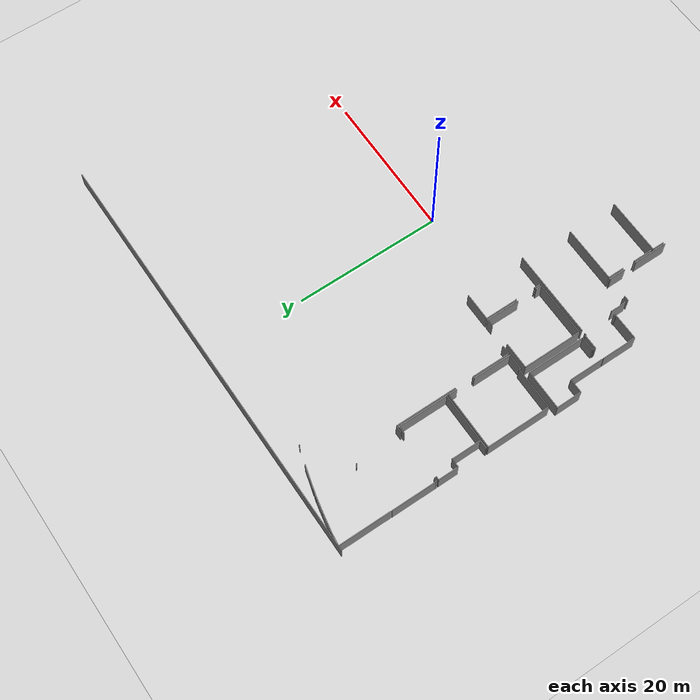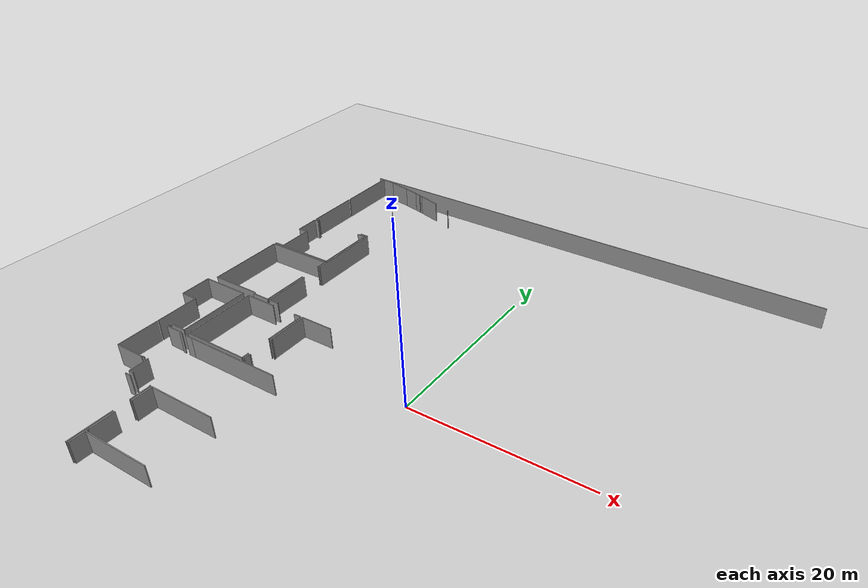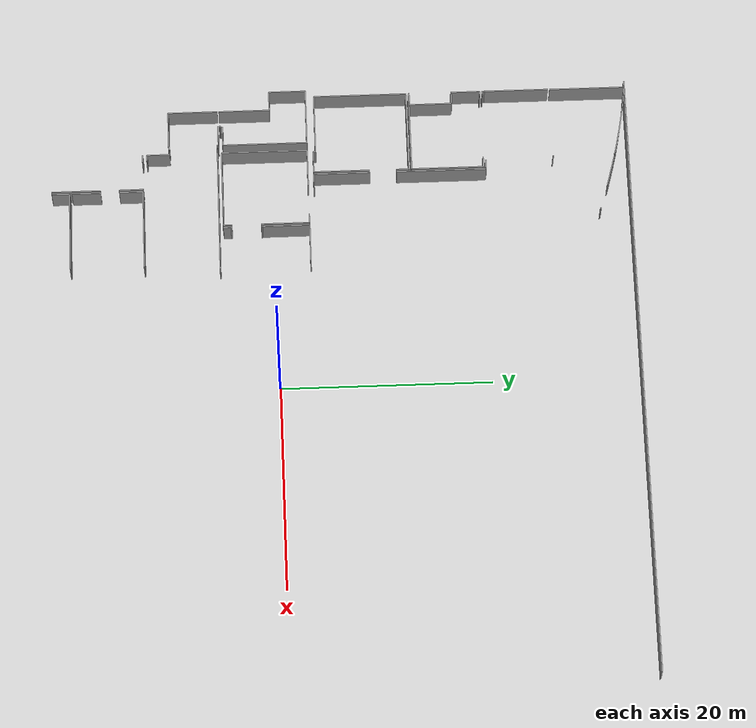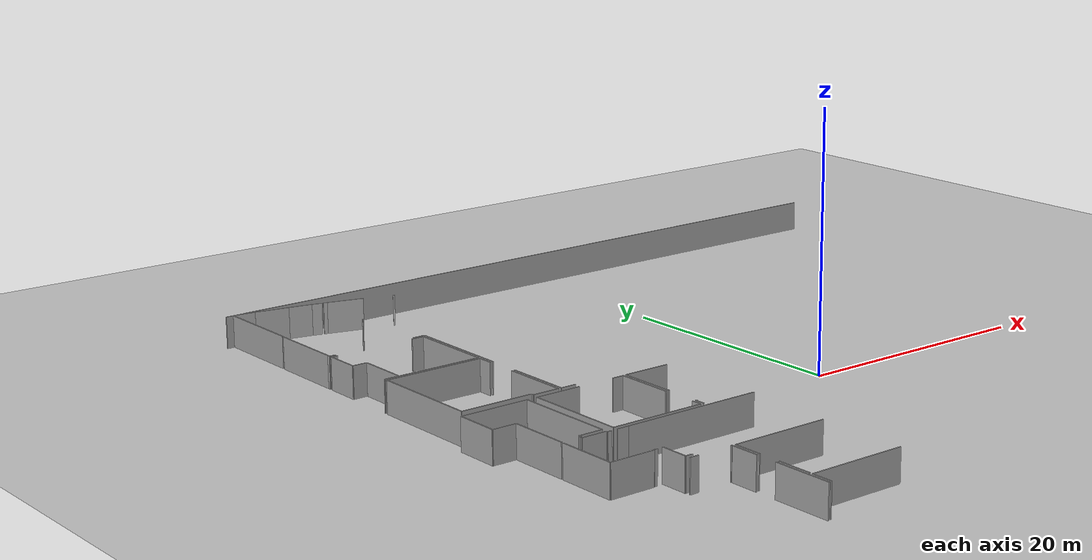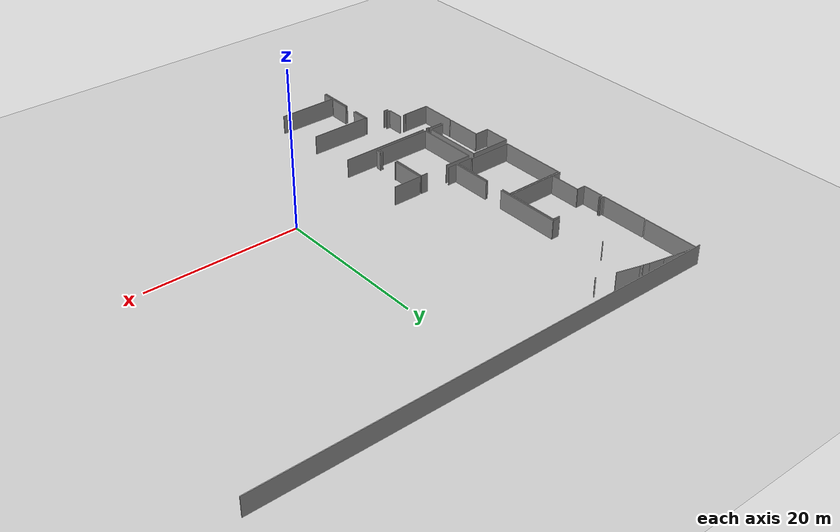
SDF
<sdf version="1.6">
 <world name="default">
  <model name="ground_plane">
   <static>1</static>
   <link name="link">
    <collision name="collision">
     <geometry><plane><normal>0 0 1</normal><size>100 100</size></plane></geometry>
     <surface><friction><ode><mu>100</mu><mu2>50</mu2></ode></friction></surface>
    </collision>
    <visual name="visual">
     <cast_shadows>0</cast_shadows>
     <geometry><plane><normal>0 0 1</normal><size>100 100</size></plane></geometry>
     <material>
      <script><uri>file://media/materials/scripts/gazebo.material</uri><name>Gazebo/Grey</name></script>
     </material>
    </visual>
   </link>
  </model>
  <model name="50041192">
   <static>1</static>
   <link name="Wall_0">
    <collision name="Wall_0_Collision">
     <geometry><box><size>7.18817429759 0.1 2.5</size></box></geometry>
     <pose>3.59408714879 0 1.25 0 0 0</pose>
    </collision>
    <visual name="Wall_0_Visual">
     <pose>3.59408714879 0 1.25 0 0 0</pose>
     <geometry><box><size>7.18817429759 0.1 2.5</size></box></geometry>
     <material>
      <script><uri>file://media/materials/scripts/gazebo.material</uri><name>Gazebo/Grey</name></script>
      <ambient>1 1 1 1</ambient>
     </material>
    </visual>
    <pose>0.632839007281 -7.18817429759 0 0 0 1.57079632679</pose>
   </link>
   <link name="Wall_1">
    <collision name="Wall_1_Collision">
     <geometry><box><size>1.75687054855 0.1 2.5</size></box></geometry>
     <pose>0.878435274276 0 1.25 0 0 0</pose>
    </collision>
    <visual name="Wall_1_Visual">
     <pose>0.878435274276 0 1.25 0 0 0</pose>
     <geometry><box><size>1.75687054855 0.1 2.5</size></box></geometry>
     <material>
      <script><uri>file://media/materials/scripts/gazebo.material</uri><name>Gazebo/Grey</name></script>
      <ambient>1 1 1 1</ambient>
     </material>
    </visual>
    <pose>0.632839007281 -0.0 0 0 0 -0.12982228404</pose>
   </link>
   <link name="Wall_2">
    <collision name="Wall_2_Collision">
     <geometry><box><size>2.73227401978 0.1 2.5</size></box></geometry>
     <pose>1.36613700989 0 1.25 0 0 0</pose>
    </collision>
    <visual name="Wall_2_Visual">
     <pose>1.36613700989 0 1.25 0 0 0</pose>
     <geometry><box><size>2.73227401978 0.1 2.5</size></box></geometry>
     <material>
      <script><uri>file://media/materials/scripts/gazebo.material</uri><name>Gazebo/Grey</name></script>
      <ambient>1 1 1 1</ambient>
     </material>
    </visual>
    <pose>2.37492534279 -0.227440814304 0 0 0 -0.186057639425</pose>
   </link>
   <link name="Wall_3">
    <collision name="Wall_3_Collision">
     <geometry><box><size>1.87062123023 0.1 2.5</size></box></geometry>
     <pose>0.935310615117 0 1.25 0 0 0</pose>
    </collision>
    <visual name="Wall_3_Visual">
     <pose>0.935310615117 0 1.25 0 0 0</pose>
     <geometry><box><size>1.87062123023 0.1 2.5</size></box></geometry>
     <material>
      <script><uri>file://media/materials/scripts/gazebo.material</uri><name>Gazebo/Grey</name></script>
      <ambient>1 1 1 1</ambient>
     </material>
    </visual>
    <pose>5.06004346003 -0.73287331783 0 0 0 -0.208720073857</pose>
   </link>
   <link name="Wall_4">
    <collision name="Wall_4_Collision">
     <geometry><box><size>0.804798564311 0.1 2.5</size></box></geometry>
     <pose>0.402399282156 0 1.25 0 0 0</pose>
    </collision>
    <visual name="Wall_4_Visual">
     <pose>0.402399282156 0 1.25 0 0 0</pose>
     <geometry><box><size>0.804798564311 0.1 2.5</size></box></geometry>
     <material>
      <script><uri>file://media/materials/scripts/gazebo.material</uri><name>Gazebo/Grey</name></script>
      <ambient>1 1 1 1</ambient>
     </material>
    </visual>
    <pose>6.8900664608 -1.12048085598 0 0 0 -0.263867322598</pose>
   </link>
   <link name="Wall_5">
    <collision name="Wall_5_Collision">
     <geometry><box><size>0.0614808068669 0.1 2.5</size></box></geometry>
     <pose>0.0307404034334 0 1.25 0 0 0</pose>
    </collision>
    <visual name="Wall_5_Visual">
     <pose>0.0307404034334 0 1.25 0 0 0</pose>
     <geometry><box><size>0.0614808068669 0.1 2.5</size></box></geometry>
     <material>
      <script><uri>file://media/materials/scripts/gazebo.material</uri><name>Gazebo/Grey</name></script>
      <ambient>1 1 1 1</ambient>
     </material>
    </visual>
    <pose>7.66700977215 -7.18461616662 0 0 0 -3.08368644834</pose>
   </link>
   <link name="Wall_6">
    <collision name="Wall_6_Collision">
     <geometry><box><size>2.91367959298 0.1 2.5</size></box></geometry>
     <pose>1.45683979649 0 1.25 0 0 0</pose>
    </collision>
    <visual name="Wall_6_Visual">
     <pose>1.45683979649 0 1.25 0 0 0</pose>
     <geometry><box><size>2.91367959298 0.1 2.5</size></box></geometry>
     <material>
      <script><uri>file://media/materials/scripts/gazebo.material</uri><name>Gazebo/Grey</name></script>
      <ambient>1 1 1 1</ambient>
     </material>
    </visual>
    <pose>8.08483600829 -1.42307447931 0 0 0 -0.268842455313</pose>
   </link>
   <link name="Wall_7">
    <collision name="Wall_7_Collision">
     <geometry><box><size>0.12458212514 0.1 2.5</size></box></geometry>
     <pose>0.0622910625701 0 1.25 0 0 0</pose>
    </collision>
    <visual name="Wall_7_Visual">
     <pose>0.0622910625701 0 1.25 0 0 0</pose>
     <geometry><box><size>0.12458212514 0.1 2.5</size></box></geometry>
     <material>
      <script><uri>file://media/materials/scripts/gazebo.material</uri><name>Gazebo/Grey</name></script>
      <ambient>1 1 1 1</ambient>
     </material>
    </visual>
    <pose>13.2101965867 -2.92520300408 0 0 0 -0.531760269162</pose>
   </link>
   <link name="Wall_8">
    <collision name="Wall_8_Collision">
     <geometry><box><size>0.301906292314 0.1 2.5</size></box></geometry>
     <pose>0.150953146157 0 1.25 0 0 0</pose>
    </collision>
    <visual name="Wall_8_Visual">
     <pose>0.150953146157 0 1.25 0 0 0</pose>
     <geometry><box><size>0.301906292314 0.1 2.5</size></box></geometry>
     <material>
      <script><uri>file://media/materials/scripts/gazebo.material</uri><name>Gazebo/Grey</name></script>
      <ambient>1 1 1 1</ambient>
     </material>
    </visual>
    <pose>7.79090897539 -1.35412298426 0 0 0 -0.230420648931</pose>
   </link>
   <link name="Wall_9">
    <collision name="Wall_9_Collision">
     <geometry><box><size>6.08961406987 0.1 2.5</size></box></geometry>
     <pose>3.04480703493 0 1.25 0 0 0</pose>
    </collision>
    <visual name="Wall_9_Visual">
     <pose>3.04480703493 0 1.25 0 0 0</pose>
     <geometry><box><size>6.08961406987 0.1 2.5</size></box></geometry>
     <material>
      <script><uri>file://media/materials/scripts/gazebo.material</uri><name>Gazebo/Grey</name></script>
      <ambient>1 1 1 1</ambient>
     </material>
    </visual>
    <pose>0.612760982552 -13.4373959564 0 0 0 1.57079632679</pose>
   </link>
   <link name="Wall_10">
    <collision name="Wall_10_Collision">
     <geometry><box><size>0.501061085484 0.1 2.5</size></box></geometry>
     <pose>0.250530542742 0 1.25 0 0 0</pose>
    </collision>
    <visual name="Wall_10_Visual">
     <pose>0.250530542742 0 1.25 0 0 0</pose>
     <geometry><box><size>0.501061085484 0.1 2.5</size></box></geometry>
     <material>
      <script><uri>file://media/materials/scripts/gazebo.material</uri><name>Gazebo/Grey</name></script>
      <ambient>1 1 1 1</ambient>
     </material>
    </visual>
    <pose>1.11623651405 -13.6559668586 0 0 0 3.14159265359</pose>
   </link>
   <link name="Wall_11">
    <collision name="Wall_11_Collision">
     <geometry><box><size>0.218584237309 0.1 2.5</size></box></geometry>
     <pose>0.109292118655 0 1.25 0 0 0</pose>
    </collision>
    <visual name="Wall_11_Visual">
     <pose>0.109292118655 0 1.25 0 0 0</pose>
     <geometry><box><size>0.218584237309 0.1 2.5</size></box></geometry>
     <material>
      <script><uri>file://media/materials/scripts/gazebo.material</uri><name>Gazebo/Grey</name></script>
      <ambient>1 1 1 1</ambient>
     </material>
    </visual>
    <pose>0.615175428564 -13.6559668586 0 0 0 1.58184238914</pose>
   </link>
   <link name="Wall_12">
    <collision name="Wall_12_Collision">
     <geometry><box><size>0.0498138335049 0.1 2.5</size></box></geometry>
     <pose>0.0249069167524 0 1.25 0 0 0</pose>
    </collision>
    <visual name="Wall_12_Visual">
     <pose>0.0249069167524 0 1.25 0 0 0</pose>
     <geometry><box><size>0.0498138335049 0.1 2.5</size></box></geometry>
     <material>
      <script><uri>file://media/materials/scripts/gazebo.material</uri><name>Gazebo/Grey</name></script>
      <ambient>1 1 1 1</ambient>
     </material>
    </visual>
    <pose>0.622291690493 -20.7590128728 0 0 0 1.57079632679</pose>
   </link>
   <link name="Wall_13">
    <collision name="Wall_13_Collision">
     <geometry><box><size>1.17329368559 0.1 2.5</size></box></geometry>
     <pose>0.586646842794 0 1.25 0 0 0</pose>
    </collision>
    <visual name="Wall_13_Visual">
     <pose>0.586646842794 0 1.25 0 0 0</pose>
     <geometry><box><size>1.17329368559 0.1 2.5</size></box></geometry>
     <material>
      <script><uri>file://media/materials/scripts/gazebo.material</uri><name>Gazebo/Grey</name></script>
      <ambient>1 1 1 1</ambient>
     </material>
    </visual>
    <pose>0.622291690493 -20.7091990393 0 0 0 0.0</pose>
   </link>
   <link name="Wall_14">
    <collision name="Wall_14_Collision">
     <geometry><box><size>4.04254508025 0.1 2.5</size></box></geometry>
     <pose>2.02127254012 0 1.25 0 0 0</pose>
    </collision>
    <visual name="Wall_14_Visual">
     <pose>2.02127254012 0 1.25 0 0 0</pose>
     <geometry><box><size>4.04254508025 0.1 2.5</size></box></geometry>
     <material>
      <script><uri>file://media/materials/scripts/gazebo.material</uri><name>Gazebo/Grey</name></script>
      <ambient>1 1 1 1</ambient>
     </material>
    </visual>
    <pose>1.79558537608 -20.7091990393 0 0 0 1.57079632679</pose>
   </link>
   <link name="Wall_15">
    <collision name="Wall_15_Collision">
     <geometry><box><size>1.1757081316 0.1 2.5</size></box></geometry>
     <pose>0.5878540658 0 1.25 0 0 0</pose>
    </collision>
    <visual name="Wall_15_Visual">
     <pose>0.5878540658 0 1.25 0 0 0</pose>
     <geometry><box><size>1.1757081316 0.1 2.5</size></box></geometry>
     <material>
      <script><uri>file://media/materials/scripts/gazebo.material</uri><name>Gazebo/Grey</name></script>
      <ambient>1 1 1 1</ambient>
     </material>
    </visual>
    <pose>1.79558537608 -16.6666539591 0 0 0 3.14159265359</pose>
   </link>
   <link name="Wall_16">
    <collision name="Wall_16_Collision">
     <geometry><box><size>2.77407139136 0.1 2.5</size></box></geometry>
     <pose>1.38703569568 0 1.25 0 0 0</pose>
    </collision>
    <visual name="Wall_16_Visual">
     <pose>1.38703569568 0 1.25 0 0 0</pose>
     <geometry><box><size>2.77407139136 0.1 2.5</size></box></geometry>
     <material>
      <script><uri>file://media/materials/scripts/gazebo.material</uri><name>Gazebo/Grey</name></script>
      <ambient>1 1 1 1</ambient>
     </material>
    </visual>
    <pose>0.619877244482 -16.6666539591 0 0 0 1.57079632679</pose>
   </link>
   <link name="Wall_17">
    <collision name="Wall_17_Collision">
     <geometry><box><size>0.510718869531 0.1 2.5</size></box></geometry>
     <pose>0.255359434765 0 1.25 0 0 0</pose>
    </collision>
    <visual name="Wall_17_Visual">
     <pose>0.255359434765 0 1.25 0 0 0</pose>
     <geometry><box><size>0.510718869531 0.1 2.5</size></box></geometry>
     <material>
      <script><uri>file://media/materials/scripts/gazebo.material</uri><name>Gazebo/Grey</name></script>
      <ambient>1 1 1 1</ambient>
     </material>
    </visual>
    <pose>0.619877244482 -13.8925825677 0 0 0 0.0</pose>
   </link>
   <link name="Wall_18">
    <collision name="Wall_18_Collision">
     <geometry><box><size>1.01838791252 0.1 2.5</size></box></geometry>
     <pose>0.50919395626 0 1.25 0 0 0</pose>
    </collision>
    <visual name="Wall_18_Visual">
     <pose>0.50919395626 0 1.25 0 0 0</pose>
     <geometry><box><size>1.01838791252 0.1 2.5</size></box></geometry>
     <material>
      <script><uri>file://media/materials/scripts/gazebo.material</uri><name>Gazebo/Grey</name></script>
      <ambient>1 1 1 1</ambient>
     </material>
    </visual>
    <pose>7.54539793883 -13.8925825677 0 0 0 0.0</pose>
   </link>
   <link name="Wall_19">
    <collision name="Wall_19_Collision">
     <geometry><box><size>6.8575349777 0.1 2.5</size></box></geometry>
     <pose>3.42876748885 0 1.25 0 0 0</pose>
    </collision>
    <visual name="Wall_19_Visual">
     <pose>3.42876748885 0 1.25 0 0 0</pose>
     <geometry><box><size>6.8575349777 0.1 2.5</size></box></geometry>
     <material>
      <script><uri>file://media/materials/scripts/gazebo.material</uri><name>Gazebo/Grey</name></script>
      <ambient>1 1 1 1</ambient>
     </material>
    </visual>
    <pose>8.56378585135 -13.8925825677 0 0 0 -1.57079632679</pose>
   </link>
   <link name="Wall_20">
    <collision name="Wall_20_Collision">
     <geometry><box><size>7.94149914271 0.1 2.5</size></box></geometry>
     <pose>3.97074957136 0 1.25 0 0 0</pose>
    </collision>
    <visual name="Wall_20_Visual">
     <pose>3.97074957136 0 1.25 0 0 0</pose>
     <geometry><box><size>7.94149914271 0.1 2.5</size></box></geometry>
     <material>
      <script><uri>file://media/materials/scripts/gazebo.material</uri><name>Gazebo/Grey</name></script>
      <ambient>1 1 1 1</ambient>
     </material>
    </visual>
    <pose>8.56378585135 -20.7501175454 0 0 0 -3.14047254653</pose>
   </link>
   <link name="Wall_21">
    <collision name="Wall_21_Collision">
     <geometry><box><size>8.85262984001 0.1 2.5</size></box></geometry>
     <pose>4.42631492001 0 1.25 0 0 0</pose>
    </collision>
    <visual name="Wall_21_Visual">
     <pose>4.42631492001 0 1.25 0 0 0</pose>
     <geometry><box><size>8.85262984001 0.1 2.5</size></box></geometry>
     <material>
      <script><uri>file://media/materials/scripts/gazebo.material</uri><name>Gazebo/Grey</name></script>
      <ambient>1 1 1 1</ambient>
     </material>
    </visual>
    <pose>0.62610397367 -29.8576620538 0 0 0 1.57079632679</pose>
   </link>
   <link name="Wall_22">
    <collision name="Wall_22_Collision">
     <geometry><box><size>7.93755480157 0.1 2.5</size></box></geometry>
     <pose>3.96877740079 0 1.25 0 0 0</pose>
    </collision>
    <visual name="Wall_22_Visual">
     <pose>3.96877740079 0 1.25 0 0 0</pose>
     <geometry><box><size>7.93755480157 0.1 2.5</size></box></geometry>
     <material>
      <script><uri>file://media/materials/scripts/gazebo.material</uri><name>Gazebo/Grey</name></script>
      <ambient>1 1 1 1</ambient>
     </material>
    </visual>
    <pose>0.62610397367 -21.0050322138 0 0 0 0.0</pose>
   </link>
   <link name="Wall_23">
    <collision name="Wall_23_Collision">
     <geometry><box><size>1.21344973505 0.1 2.5</size></box></geometry>
     <pose>0.606724867523 0 1.25 0 0 0</pose>
    </collision>
    <visual name="Wall_23_Visual">
     <pose>0.606724867523 0 1.25 0 0 0</pose>
     <geometry><box><size>1.21344973505 0.1 2.5</size></box></geometry>
     <material>
      <script><uri>file://media/materials/scripts/gazebo.material</uri><name>Gazebo/Grey</name></script>
      <ambient>1 1 1 1</ambient>
     </material>
    </visual>
    <pose>8.56365877524 -21.0050322138 0 0 0 -1.57079632679</pose>
   </link>
   <link name="Wall_24">
    <collision name="Wall_24_Collision">
     <geometry><box><size>5.33643399032 0.1 2.5</size></box></geometry>
     <pose>2.66821699516 0 1.25 0 0 0</pose>
    </collision>
    <visual name="Wall_24_Visual">
     <pose>2.66821699516 0 1.25 0 0 0</pose>
     <geometry><box><size>5.33643399032 0.1 2.5</size></box></geometry>
     <material>
      <script><uri>file://media/materials/scripts/gazebo.material</uri><name>Gazebo/Grey</name></script>
      <ambient>1 1 1 1</ambient>
     </material>
    </visual>
    <pose>8.56365877524 -24.7532690328 0 0 0 -1.57079632679</pose>
   </link>
   <link name="Wall_25">
    <collision name="Wall_25_Collision">
     <geometry><box><size>2.12865184959 0.1 2.5</size></box></geometry>
     <pose>1.0643259248 0 1.25 0 0 0</pose>
    </collision>
    <visual name="Wall_25_Visual">
     <pose>1.0643259248 0 1.25 0 0 0</pose>
     <geometry><box><size>2.12865184959 0.1 2.5</size></box></geometry>
     <material>
      <script><uri>file://media/materials/scripts/gazebo.material</uri><name>Gazebo/Grey</name></script>
      <ambient>1 1 1 1</ambient>
     </material>
    </visual>
    <pose>8.56365877524 -30.0897030231 0 0 0 3.14159265359</pose>
   </link>
   <link name="Wall_26">
    <collision name="Wall_26_Collision">
     <geometry><box><size>0.224289326878 0.1 2.5</size></box></geometry>
     <pose>0.112144663439 0 1.25 0 0 0</pose>
    </collision>
    <visual name="Wall_26_Visual">
     <pose>0.112144663439 0 1.25 0 0 0</pose>
     <geometry><box><size>0.224289326878 0.1 2.5</size></box></geometry>
     <material>
      <script><uri>file://media/materials/scripts/gazebo.material</uri><name>Gazebo/Grey</name></script>
      <ambient>1 1 1 1</ambient>
     </material>
    </visual>
    <pose>6.43500692565 -30.0897030231 0 0 0 1.57079632679</pose>
   </link>
   <link name="Wall_27">
    <collision name="Wall_27_Collision">
     <geometry><box><size>5.80890812403 0.1 2.5</size></box></geometry>
     <pose>2.90445406202 0 1.25 0 0 0</pose>
    </collision>
    <visual name="Wall_27_Visual">
     <pose>2.90445406202 0 1.25 0 0 0</pose>
     <geometry><box><size>5.80890812403 0.1 2.5</size></box></geometry>
     <material>
      <script><uri>file://media/materials/scripts/gazebo.material</uri><name>Gazebo/Grey</name></script>
      <ambient>1 1 1 1</ambient>
     </material>
    </visual>
    <pose>6.43500692565 -29.8654136963 0 0 0 3.14025821266</pose>
   </link>
   <link name="Wall_28">
    <collision name="Wall_28_Collision">
     <geometry><box><size>5.35956184159 0.1 2.5</size></box></geometry>
     <pose>2.67978092079 0 1.25 0 0 0</pose>
    </collision>
    <visual name="Wall_28_Visual">
     <pose>2.67978092079 0 1.25 0 0 0</pose>
     <geometry><box><size>5.35956184159 0.1 2.5</size></box></geometry>
     <material>
      <script><uri>file://media/materials/scripts/gazebo.material</uri><name>Gazebo/Grey</name></script>
      <ambient>1 1 1 1</ambient>
     </material>
    </visual>
    <pose>8.81221963834 -30.1052063081 0 0 0 1.57079632679</pose>
   </link>
   <link name="Wall_29">
    <collision name="Wall_29_Collision">
     <geometry><box><size>8.53328758594 0.1 2.5</size></box></geometry>
     <pose>4.26664379297 0 1.25 0 0 0</pose>
    </collision>
    <visual name="Wall_29_Visual">
     <pose>4.26664379297 0 1.25 0 0 0</pose>
     <geometry><box><size>8.53328758594 0.1 2.5</size></box></geometry>
     <material>
      <script><uri>file://media/materials/scripts/gazebo.material</uri><name>Gazebo/Grey</name></script>
      <ambient>1 1 1 1</ambient>
     </material>
    </visual>
    <pose>8.81221963834 -22.1926854993 0 0 0 1.57079632679</pose>
   </link>
   <link name="Wall_30">
    <collision name="Wall_30_Collision">
     <geometry><box><size>0.975054960416 0.1 2.5</size></box></geometry>
     <pose>0.487527480208 0 1.25 0 0 0</pose>
    </collision>
    <visual name="Wall_30_Visual">
     <pose>0.487527480208 0 1.25 0 0 0</pose>
     <geometry><box><size>0.975054960416 0.1 2.5</size></box></geometry>
     <material>
      <script><uri>file://media/materials/scripts/gazebo.material</uri><name>Gazebo/Grey</name></script>
      <ambient>1 1 1 1</ambient>
     </material>
    </visual>
    <pose>8.81221963834 -13.6593979134 0 0 0 3.14159265359</pose>
   </link>
   <link name="Wall_39">
    <collision name="Wall_39_Collision">
     <geometry><box><size>1.22376359055 0.1 2.5</size></box></geometry>
     <pose>0.611881795276 0 1.25 0 0 0</pose>
    </collision>
    <visual name="Wall_39_Visual">
     <pose>0.611881795276 0 1.25 0 0 0</pose>
     <geometry><box><size>1.22376359055 0.1 2.5</size></box></geometry>
     <material>
      <script><uri>file://media/materials/scripts/gazebo.material</uri><name>Gazebo/Grey</name></script>
      <ambient>1 1 1 1</ambient>
     </material>
    </visual>
    <pose>10.035962538 -30.0980900461 0 0 0 -3.13577755818</pose>
   </link>
   <link name="Wall_47">
    <collision name="Wall_47_Collision">
     <geometry><box><size>8.17760156558 0.1 2.5</size></box></geometry>
     <pose>4.08880078279 0 1.25 0 0 0</pose>
    </collision>
    <visual name="Wall_47_Visual">
     <pose>4.08880078279 0 1.25 0 0 0</pose>
     <geometry><box><size>8.17760156558 0.1 2.5</size></box></geometry>
     <material>
      <script><uri>file://media/materials/scripts/gazebo.material</uri><name>Gazebo/Grey</name></script>
      <ambient>1 1 1 1</ambient>
     </material>
    </visual>
    <pose>6.27717840215 -38.84257812 0 0 0 1.57079632679</pose>
   </link>
   <link name="Wall_48">
    <collision name="Wall_48_Collision">
     <geometry><box><size>3.64644885822 0.1 2.5</size></box></geometry>
     <pose>1.82322442911 0 1.25 0 0 0</pose>
    </collision>
    <visual name="Wall_48_Visual">
     <pose>1.82322442911 0 1.25 0 0 0</pose>
     <geometry><box><size>3.64644885822 0.1 2.5</size></box></geometry>
     <material>
      <script><uri>file://media/materials/scripts/gazebo.material</uri><name>Gazebo/Grey</name></script>
      <ambient>1 1 1 1</ambient>
     </material>
    </visual>
    <pose>6.27717840215 -30.6649765545 0 0 0 0.0</pose>
   </link>
   <link name="Wall_49">
    <collision name="Wall_49_Collision">
     <geometry><box><size>0.926384811864 0.1 2.5</size></box></geometry>
     <pose>0.463192405932 0 1.25 0 0 0</pose>
    </collision>
    <visual name="Wall_49_Visual">
     <pose>0.463192405932 0 1.25 0 0 0</pose>
     <geometry><box><size>0.926384811864 0.1 2.5</size></box></geometry>
     <material>
      <script><uri>file://media/materials/scripts/gazebo.material</uri><name>Gazebo/Grey</name></script>
      <ambient>1 1 1 1</ambient>
     </material>
    </visual>
    <pose>12.8988601273 -30.6649765545 0 0 0 0.0</pose>
   </link>
   <link name="Wall_50">
    <collision name="Wall_50_Collision">
     <geometry><box><size>4.58338098687 0.1 2.5</size></box></geometry>
     <pose>2.29169049344 0 1.25 0 0 0</pose>
    </collision>
    <visual name="Wall_50_Visual">
     <pose>2.29169049344 0 1.25 0 0 0</pose>
     <geometry><box><size>4.58338098687 0.1 2.5</size></box></geometry>
     <material>
      <script><uri>file://media/materials/scripts/gazebo.material</uri><name>Gazebo/Grey</name></script>
      <ambient>1 1 1 1</ambient>
     </material>
    </visual>
    <pose>13.8252449392 -30.6649765545 0 0 0 -1.57079632679</pose>
   </link>
   <link name="Wall_51">
    <collision name="Wall_51_Collision">
     <geometry><box><size>0.834508787313 0.1 2.5</size></box></geometry>
     <pose>0.417254393656 0 1.25 0 0 0</pose>
    </collision>
    <visual name="Wall_51_Visual">
     <pose>0.417254393656 0 1.25 0 0 0</pose>
     <geometry><box><size>0.834508787313 0.1 2.5</size></box></geometry>
     <material>
      <script><uri>file://media/materials/scripts/gazebo.material</uri><name>Gazebo/Grey</name></script>
      <ambient>1 1 1 1</ambient>
     </material>
    </visual>
    <pose>13.8252449392 -38.0057819628 0 0 0 -1.57079632679</pose>
   </link>
   <link name="Wall_52">
    <collision name="Wall_52_Collision">
     <geometry><box><size>7.54806688363 0.1 2.5</size></box></geometry>
     <pose>3.77403344182 0 1.25 0 0 0</pose>
    </collision>
    <visual name="Wall_52_Visual">
     <pose>3.77403344182 0 1.25 0 0 0</pose>
     <geometry><box><size>7.54806688363 0.1 2.5</size></box></geometry>
     <material>
      <script><uri>file://media/materials/scripts/gazebo.material</uri><name>Gazebo/Grey</name></script>
      <ambient>1 1 1 1</ambient>
     </material>
    </visual>
    <pose>13.8252449392 -38.8402907501 0 0 0 -3.14128961309</pose>
   </link>
   <link name="Wall_53">
    <collision name="Wall_53_Collision">
     <geometry><box><size>11.0978104787 0.1 2.5</size></box></geometry>
     <pose>5.54890523935 0 1.25 0 0 0</pose>
    </collision>
    <visual name="Wall_53_Visual">
     <pose>5.54890523935 0 1.25 0 0 0</pose>
     <geometry><box><size>11.0978104787 0.1 2.5</size></box></geometry>
     <material>
      <script><uri>file://media/materials/scripts/gazebo.material</uri><name>Gazebo/Grey</name></script>
      <ambient>1 1 1 1</ambient>
     </material>
    </visual>
    <pose>7.18894946183 -39.2365140483 0 0 0 0.0</pose>
   </link>
   <link name="Wall_68">
    <collision name="Wall_68_Collision">
     <geometry><box><size>0.579085814494 0.1 2.5</size></box></geometry>
     <pose>0.289542907247 0 1.25 0 0 0</pose>
    </collision>
    <visual name="Wall_68_Visual">
     <pose>0.289542907247 0 1.25 0 0 0</pose>
     <geometry><box><size>0.579085814494 0.1 2.5</size></box></geometry>
     <material>
      <script><uri>file://media/materials/scripts/gazebo.material</uri><name>Gazebo/Grey</name></script>
      <ambient>1 1 1 1</ambient>
     </material>
    </visual>
    <pose>6.85651836885 -45.9731996493 0 0 0 3.14159265359</pose>
   </link>
   <link name="Wall_69">
    <collision name="Wall_69_Collision">
     <geometry><box><size>2.1872339344 0.1 2.5</size></box></geometry>
     <pose>1.0936169672 0 1.25 0 0 0</pose>
    </collision>
    <visual name="Wall_69_Visual">
     <pose>1.0936169672 0 1.25 0 0 0</pose>
     <geometry><box><size>2.1872339344 0.1 2.5</size></box></geometry>
     <material>
      <script><uri>file://media/materials/scripts/gazebo.material</uri><name>Gazebo/Grey</name></script>
      <ambient>1 1 1 1</ambient>
     </material>
    </visual>
    <pose>6.27743255436 -45.9731996493 0 0 0 1.57079632679</pose>
   </link>
   <link name="Wall_70">
    <collision name="Wall_70_Collision">
     <geometry><box><size>0.911561559292 0.1 2.5</size></box></geometry>
     <pose>0.455780779646 0 1.25 0 0 0</pose>
    </collision>
    <visual name="Wall_70_Visual">
     <pose>0.455780779646 0 1.25 0 0 0</pose>
     <geometry><box><size>0.911561559292 0.1 2.5</size></box></geometry>
     <material>
      <script><uri>file://media/materials/scripts/gazebo.material</uri><name>Gazebo/Grey</name></script>
      <ambient>1 1 1 1</ambient>
     </material>
    </visual>
    <pose>6.27743255436 -39.2455364518 0 0 0 0.00989790623113</pose>
   </link>
   <link name="Wall_71">
    <collision name="Wall_71_Collision">
     <geometry><box><size>3.78165783488 0.1 2.5</size></box></geometry>
     <pose>1.89082891744 0 1.25 0 0 0</pose>
    </collision>
    <visual name="Wall_71_Visual">
     <pose>1.89082891744 0 1.25 0 0 0</pose>
     <geometry><box><size>3.78165783488 0.1 2.5</size></box></geometry>
     <material>
      <script><uri>file://media/materials/scripts/gazebo.material</uri><name>Gazebo/Grey</name></script>
      <ambient>1 1 1 1</ambient>
     </material>
    </visual>
    <pose>14.0745682589 -30.646423443 0 0 0 0.0</pose>
   </link>
   <link name="Wall_75">
    <collision name="Wall_75_Collision">
     <geometry><box><size>0.688371265551 0.1 2.5</size></box></geometry>
     <pose>0.344185632775 0 1.25 0 0 0</pose>
    </collision>
    <visual name="Wall_75_Visual">
     <pose>0.344185632775 0 1.25 0 0 0</pose>
     <geometry><box><size>0.688371265551 0.1 2.5</size></box></geometry>
     <material>
      <script><uri>file://media/materials/scripts/gazebo.material</uri><name>Gazebo/Grey</name></script>
      <ambient>1 1 1 1</ambient>
     </material>
    </visual>
    <pose>14.0893090872 -38.8287268245 0 0 0 1.57079632679</pose>
   </link>
   <link name="Wall_76">
    <collision name="Wall_76_Collision">
     <geometry><box><size>0.0475264635991 0.1 2.5</size></box></geometry>
     <pose>0.0237632317995 0 1.25 0 0 0</pose>
    </collision>
    <visual name="Wall_76_Visual">
     <pose>0.0237632317995 0 1.25 0 0 0</pose>
     <geometry><box><size>0.0475264635991 0.1 2.5</size></box></geometry>
     <material>
      <script><uri>file://media/materials/scripts/gazebo.material</uri><name>Gazebo/Grey</name></script>
      <ambient>1 1 1 1</ambient>
     </material>
    </visual>
    <pose>14.0893090872 -38.1403555589 0 0 0 0.0</pose>
   </link>
   <link name="Wall_77">
    <collision name="Wall_77_Collision">
     <geometry><box><size>0.142452314691 0.1 2.5</size></box></geometry>
     <pose>0.0712261573456 0 1.25 0 0 0</pose>
    </collision>
    <visual name="Wall_77_Visual">
     <pose>0.0712261573456 0 1.25 0 0 0</pose>
     <geometry><box><size>0.142452314691 0.1 2.5</size></box></geometry>
     <material>
      <script><uri>file://media/materials/scripts/gazebo.material</uri><name>Gazebo/Grey</name></script>
      <ambient>1 1 1 1</ambient>
     </material>
    </visual>
    <pose>14.1368355508 -38.1403555589 0 0 0 1.57079632679</pose>
   </link>
   <link name="Wall_78">
    <collision name="Wall_78_Collision">
     <geometry><box><size>0.116147560774 0.1 2.5</size></box></geometry>
     <pose>0.0580737803871 0 1.25 0 0 0</pose>
    </collision>
    <visual name="Wall_78_Visual">
     <pose>0.0580737803871 0 1.25 0 0 0</pose>
     <geometry><box><size>0.116147560774 0.1 2.5</size></box></geometry>
     <material>
      <script><uri>file://media/materials/scripts/gazebo.material</uri><name>Gazebo/Grey</name></script>
      <ambient>1 1 1 1</ambient>
     </material>
    </visual>
    <pose>14.1368355508 -35.2195112653 0 0 0 1.57079632679</pose>
   </link>
   <link name="Wall_80">
    <collision name="Wall_80_Collision">
     <geometry><box><size>4.45695429049 0.1 2.5</size></box></geometry>
     <pose>2.22847714524 0 1.25 0 0 0</pose>
    </collision>
    <visual name="Wall_80_Visual">
     <pose>2.22847714524 0 1.25 0 0 0</pose>
     <geometry><box><size>4.45695429049 0.1 2.5</size></box></geometry>
     <material>
      <script><uri>file://media/materials/scripts/gazebo.material</uri><name>Gazebo/Grey</name></script>
      <ambient>1 1 1 1</ambient>
     </material>
    </visual>
    <pose>14.0857509562 -35.1033637045 0 0 0 1.57330537408</pose>
   </link>
   <link name="Wall_329">
    <collision name="Wall_329_Collision">
     <geometry><box><size>7.76282515599 0.1 2.5</size></box></geometry>
     <pose>3.88141257799 0 1.25 0 0 0</pose>
    </collision>
    <visual name="Wall_329_Visual">
     <pose>3.88141257799 0 1.25 0 0 0</pose>
     <geometry><box><size>7.76282515599 0.1 2.5</size></box></geometry>
     <material>
      <script><uri>file://media/materials/scripts/gazebo.material</uri><name>Gazebo/Grey</name></script>
      <ambient>1 1 1 1</ambient>
     </material>
    </visual>
    <pose>10.0898428069 -46.3958547774 0 0 0 0.0</pose>
   </link>
   <link name="Wall_332">
    <collision name="Wall_332_Collision">
     <geometry><box><size>2.73544025517 0.1 2.5</size></box></geometry>
     <pose>1.36772012758 0 1.25 0 0 0</pose>
    </collision>
    <visual name="Wall_332_Visual">
     <pose>1.36772012758 0 1.25 0 0 0</pose>
     <geometry><box><size>2.73544025517 0.1 2.5</size></box></geometry>
     <material>
      <script><uri>file://media/materials/scripts/gazebo.material</uri><name>Gazebo/Grey</name></script>
      <ambient>1 1 1 1</ambient>
     </material>
    </visual>
    <pose>10.099627667 -53.1465187501 0 0 0 1.57079632679</pose>
   </link>
   <link name="Wall_333">
    <collision name="Wall_333_Collision">
     <geometry><box><size>2.25219108024 0.1 2.5</size></box></geometry>
     <pose>1.12609554012 0 1.25 0 0 0</pose>
    </collision>
    <visual name="Wall_333_Visual">
     <pose>1.12609554012 0 1.25 0 0 0</pose>
     <geometry><box><size>2.25219108024 0.1 2.5</size></box></geometry>
     <material>
      <script><uri>file://media/materials/scripts/gazebo.material</uri><name>Gazebo/Grey</name></script>
      <ambient>1 1 1 1</ambient>
     </material>
    </visual>
    <pose>10.099627667 -48.6480246019 0 0 0 1.57514093637</pose>
   </link>
   <link name="Wall_335">
    <collision name="Wall_335_Collision">
     <geometry><box><size>0.715184323892 0.1 2.5</size></box></geometry>
     <pose>0.357592161946 0 1.25 0 0 0</pose>
    </collision>
    <visual name="Wall_335_Visual">
     <pose>0.357592161946 0 1.25 0 0 0</pose>
     <geometry><box><size>0.715184323892 0.1 2.5</size></box></geometry>
     <material>
      <script><uri>file://media/materials/scripts/gazebo.material</uri><name>Gazebo/Grey</name></script>
      <ambient>1 1 1 1</ambient>
     </material>
    </visual>
    <pose>6.28137191364 -46.378572427 0 0 0 0.0</pose>
   </link>
   <link name="Wall_336">
    <collision name="Wall_336_Collision">
     <geometry><box><size>0.0973402971039 0.1 2.5</size></box></geometry>
     <pose>0.048670148552 0 1.25 0 0 0</pose>
    </collision>
    <visual name="Wall_336_Visual">
     <pose>0.048670148552 0 1.25 0 0 0</pose>
     <geometry><box><size>0.0973402971039 0.1 2.5</size></box></geometry>
     <material>
      <script><uri>file://media/materials/scripts/gazebo.material</uri><name>Gazebo/Grey</name></script>
      <ambient>1 1 1 1</ambient>
     </material>
    </visual>
    <pose>9.74521240771 -46.378572427 0 0 0 0.0</pose>
   </link>
   <link name="Wall_337">
    <collision name="Wall_337_Collision">
     <geometry><box><size>2.30071289695 0.1 2.5</size></box></geometry>
     <pose>1.15035644848 0 1.25 0 0 0</pose>
    </collision>
    <visual name="Wall_337_Visual">
     <pose>1.15035644848 0 1.25 0 0 0</pose>
     <geometry><box><size>2.30071289695 0.1 2.5</size></box></geometry>
     <material>
      <script><uri>file://media/materials/scripts/gazebo.material</uri><name>Gazebo/Grey</name></script>
      <ambient>1 1 1 1</ambient>
     </material>
    </visual>
    <pose>9.84255270481 -46.378572427 0 0 0 -1.57079632679</pose>
   </link>
   <link name="Wall_338">
    <collision name="Wall_338_Collision">
     <geometry><box><size>4.68783754591 0.1 2.5</size></box></geometry>
     <pose>2.34391877295 0 1.25 0 0 0</pose>
    </collision>
    <visual name="Wall_338_Visual">
     <pose>2.34391877295 0 1.25 0 0 0</pose>
     <geometry><box><size>4.68783754591 0.1 2.5</size></box></geometry>
     <material>
      <script><uri>file://media/materials/scripts/gazebo.material</uri><name>Gazebo/Grey</name></script>
      <ambient>1 1 1 1</ambient>
     </material>
    </visual>
    <pose>9.84255270481 -50.4307752913 0 0 0 -1.57079632679</pose>
   </link>
   <link name="Wall_343">
    <collision name="Wall_343_Collision">
     <geometry><box><size>7.76460422147 0.1 2.5</size></box></geometry>
     <pose>3.88230211073 0 1.25 0 0 0</pose>
    </collision>
    <visual name="Wall_343_Visual">
     <pose>3.88230211073 0 1.25 0 0 0</pose>
     <geometry><box><size>7.76460422147 0.1 2.5</size></box></geometry>
     <material>
      <script><uri>file://media/materials/scripts/gazebo.material</uri><name>Gazebo/Grey</name></script>
      <ambient>1 1 1 1</ambient>
     </material>
    </visual>
    <pose>10.0934009378 -53.3878362751 0 0 0 0.0</pose>
   </link>
   <link name="Wall_347">
    <collision name="Wall_347_Collision">
     <geometry><box><size>1.67907753379 0.1 2.5</size></box></geometry>
     <pose>0.839538766894 0 1.25 0 0 0</pose>
    </collision>
    <visual name="Wall_347_Visual">
     <pose>0.839538766894 0 1.25 0 0 0</pose>
     <geometry><box><size>1.67907753379 0.1 2.5</size></box></geometry>
     <material>
      <script><uri>file://media/materials/scripts/gazebo.material</uri><name>Gazebo/Grey</name></script>
      <ambient>1 1 1 1</ambient>
     </material>
    </visual>
    <pose>10.0850139148 -55.0668928621 0 0 0 1.56580128774</pose>
   </link>
   <link name="Wall_348">
    <collision name="Wall_348_Collision">
     <geometry><box><size>4.75277343601 0.1 2.5</size></box></geometry>
     <pose>2.37638671801 0 1.25 0 0 0</pose>
    </collision>
    <visual name="Wall_348_Visual">
     <pose>2.37638671801 0 1.25 0 0 0</pose>
     <geometry><box><size>4.75277343601 0.1 2.5</size></box></geometry>
     <material>
      <script><uri>file://media/materials/scripts/gazebo.material</uri><name>Gazebo/Grey</name></script>
      <ambient>1 1 1 1</ambient>
     </material>
    </visual>
    <pose>1.90893726253 -43.8826706314 0 0 0 1.57079632679</pose>
   </link>
   <link name="Wall_349">
    <collision name="Wall_349_Collision">
     <geometry><box><size>1.99941544991 0.1 2.5</size></box></geometry>
     <pose>0.999707724956 0 1.25 0 0 0</pose>
    </collision>
    <visual name="Wall_349_Visual">
     <pose>0.999707724956 0 1.25 0 0 0</pose>
     <geometry><box><size>1.99941544991 0.1 2.5</size></box></geometry>
     <material>
      <script><uri>file://media/materials/scripts/gazebo.material</uri><name>Gazebo/Grey</name></script>
      <ambient>1 1 1 1</ambient>
     </material>
    </visual>
    <pose>3.45863037373 -39.1298971954 0 0 0 0.0</pose>
   </link>
   <link name="Wall_350">
    <collision name="Wall_350_Collision">
     <geometry><box><size>0.122882594386 0.1 2.5</size></box></geometry>
     <pose>0.0614412971929 0 1.25 0 0 0</pose>
    </collision>
    <visual name="Wall_350_Visual">
     <pose>0.0614412971929 0 1.25 0 0 0</pose>
     <geometry><box><size>0.122882594386 0.1 2.5</size></box></geometry>
     <material>
      <script><uri>file://media/materials/scripts/gazebo.material</uri><name>Gazebo/Grey</name></script>
      <ambient>1 1 1 1</ambient>
     </material>
    </visual>
    <pose>5.45804582364 -39.1298971954 0 0 0 -1.57079632679</pose>
   </link>
   <link name="Wall_351">
    <collision name="Wall_351_Collision">
     <geometry><box><size>0.327729277064 0.1 2.5</size></box></geometry>
     <pose>0.163864638532 0 1.25 0 0 0</pose>
    </collision>
    <visual name="Wall_351_Visual">
     <pose>0.163864638532 0 1.25 0 0 0</pose>
     <geometry><box><size>0.327729277064 0.1 2.5</size></box></geometry>
     <material>
      <script><uri>file://media/materials/scripts/gazebo.material</uri><name>Gazebo/Grey</name></script>
      <ambient>1 1 1 1</ambient>
     </material>
    </visual>
    <pose>5.45804582364 -39.2527797898 0 0 0 0.0</pose>
   </link>
   <link name="Wall_352">
    <collision name="Wall_352_Collision">
     <geometry><box><size>0.322265004511 0.1 2.5</size></box></geometry>
     <pose>0.161132502256 0 1.25 0 0 0</pose>
    </collision>
    <visual name="Wall_352_Visual">
     <pose>0.161132502256 0 1.25 0 0 0</pose>
     <geometry><box><size>0.322265004511 0.1 2.5</size></box></geometry>
     <material>
      <script><uri>file://media/materials/scripts/gazebo.material</uri><name>Gazebo/Grey</name></script>
      <ambient>1 1 1 1</ambient>
     </material>
    </visual>
    <pose>5.78577510071 -43.8164639803 0 0 0 3.14159265359</pose>
   </link>
   <link name="Wall_353">
    <collision name="Wall_353_Collision">
     <geometry><box><size>0.0606153025047 0.1 2.5</size></box></geometry>
     <pose>0.0303076512523 0 1.25 0 0 0</pose>
    </collision>
    <visual name="Wall_353_Visual">
     <pose>0.0303076512523 0 1.25 0 0 0</pose>
     <geometry><box><size>0.0606153025047 0.1 2.5</size></box></geometry>
     <material>
      <script><uri>file://media/materials/scripts/gazebo.material</uri><name>Gazebo/Grey</name></script>
      <ambient>1 1 1 1</ambient>
     </material>
    </visual>
    <pose>5.4635100962 -43.8164639803 0 0 0 -1.57079632679</pose>
   </link>
   <link name="Wall_354">
    <collision name="Wall_354_Collision">
     <geometry><box><size>3.55457723127 0.1 2.5</size></box></geometry>
     <pose>1.77728861563 0 1.25 0 0 0</pose>
    </collision>
    <visual name="Wall_354_Visual">
     <pose>1.77728861563 0 1.25 0 0 0</pose>
     <geometry><box><size>3.55457723127 0.1 2.5</size></box></geometry>
     <material>
      <script><uri>file://media/materials/scripts/gazebo.material</uri><name>Gazebo/Grey</name></script>
      <ambient>1 1 1 1</ambient>
     </material>
    </visual>
    <pose>5.4635100962 -43.8770792828 0 0 0 -3.14001965331</pose>
   </link>
   <link name="Wall_355">
    <collision name="Wall_355_Collision">
     <geometry><box><size>3.50259870637 0.1 2.5</size></box></geometry>
     <pose>1.75129935318 0 1.25 0 0 0</pose>
    </collision>
    <visual name="Wall_355_Visual">
     <pose>1.75129935318 0 1.25 0 0 0</pose>
     <geometry><box><size>3.50259870637 0.1 2.5</size></box></geometry>
     <material>
      <script><uri>file://media/materials/scripts/gazebo.material</uri><name>Gazebo/Grey</name></script>
      <ambient>1 1 1 1</ambient>
     </material>
    </visual>
    <pose>0.0 -34.1643983582 0 0 0 1.57079632679</pose>
   </link>
   <link name="Wall_356">
    <collision name="Wall_356_Collision">
     <geometry><box><size>5.45880828028 0.1 2.5</size></box></geometry>
     <pose>2.72940414014 0 1.25 0 0 0</pose>
    </collision>
    <visual name="Wall_356_Visual">
     <pose>2.72940414014 0 1.25 0 0 0</pose>
     <geometry><box><size>5.45880828028 0.1 2.5</size></box></geometry>
     <material>
      <script><uri>file://media/materials/scripts/gazebo.material</uri><name>Gazebo/Grey</name></script>
      <ambient>1 1 1 1</ambient>
     </material>
    </visual>
    <pose>0.0 -30.6617996518 0 0 0 0.0</pose>
   </link>
   <link name="Wall_357">
    <collision name="Wall_357_Collision">
     <geometry><box><size>8.03502217478 0.1 2.5</size></box></geometry>
     <pose>4.01751108739 0 1.25 0 0 0</pose>
    </collision>
    <visual name="Wall_357_Visual">
     <pose>4.01751108739 0 1.25 0 0 0</pose>
     <geometry><box><size>8.03502217478 0.1 2.5</size></box></geometry>
     <material>
      <script><uri>file://media/materials/scripts/gazebo.material</uri><name>Gazebo/Grey</name></script>
      <ambient>1 1 1 1</ambient>
     </material>
    </visual>
    <pose>5.45880828028 -30.6617996518 0 0 0 -1.57079632679</pose>
   </link>
   <link name="Wall_358">
    <collision name="Wall_358_Collision">
     <geometry><box><size>1.90220222891 0.1 2.5</size></box></geometry>
     <pose>0.951101114457 0 1.25 0 0 0</pose>
    </collision>
    <visual name="Wall_358_Visual">
     <pose>0.951101114457 0 1.25 0 0 0</pose>
     <geometry><box><size>1.90220222891 0.1 2.5</size></box></geometry>
     <material>
      <script><uri>file://media/materials/scripts/gazebo.material</uri><name>Gazebo/Grey</name></script>
      <ambient>1 1 1 1</ambient>
     </material>
    </visual>
    <pose>5.45880828028 -38.6968218266 0 0 0 3.14159265359</pose>
   </link>
   <link name="Wall_359">
    <collision name="Wall_359_Collision">
     <geometry><box><size>0.191630767667 0.1 2.5</size></box></geometry>
     <pose>0.0958153838334 0 1.25 0 0 0</pose>
    </collision>
    <visual name="Wall_359_Visual">
     <pose>0.0958153838334 0 1.25 0 0 0</pose>
     <geometry><box><size>0.191630767667 0.1 2.5</size></box></geometry>
     <material>
      <script><uri>file://media/materials/scripts/gazebo.material</uri><name>Gazebo/Grey</name></script>
      <ambient>1 1 1 1</ambient>
     </material>
    </visual>
    <pose>3.55660605136 -38.6968218266 0 0 0 -1.57079632679</pose>
   </link>
   <link name="Wall_360">
    <collision name="Wall_360_Collision">
     <geometry><box><size>0.100517199751 0.1 2.5</size></box></geometry>
     <pose>0.0502585998755 0 1.25 0 0 0</pose>
    </collision>
    <visual name="Wall_360_Visual">
     <pose>0.0502585998755 0 1.25 0 0 0</pose>
     <geometry><box><size>0.100517199751 0.1 2.5</size></box></geometry>
     <material>
      <script><uri>file://media/materials/scripts/gazebo.material</uri><name>Gazebo/Grey</name></script>
      <ambient>1 1 1 1</ambient>
     </material>
    </visual>
    <pose>3.55660605136 -38.8884525943 0 0 0 3.14159265359</pose>
   </link>
   <link name="Wall_361">
    <collision name="Wall_361_Collision">
     <geometry><box><size>0.111318668751 0.1 2.5</size></box></geometry>
     <pose>0.0556593343754 0 1.25 0 0 0</pose>
    </collision>
    <visual name="Wall_361_Visual">
     <pose>0.0556593343754 0 1.25 0 0 0</pose>
     <geometry><box><size>0.111318668751 0.1 2.5</size></box></geometry>
     <material>
      <script><uri>file://media/materials/scripts/gazebo.material</uri><name>Gazebo/Grey</name></script>
      <ambient>1 1 1 1</ambient>
     </material>
    </visual>
    <pose>3.45608885161 -38.8884525943 0 0 0 -1.57079632679</pose>
   </link>
   <link name="Wall_362">
    <collision name="Wall_362_Collision">
     <geometry><box><size>4.83308553493 0.1 2.5</size></box></geometry>
     <pose>2.41654276746 0 1.25 0 0 0</pose>
    </collision>
    <visual name="Wall_362_Visual">
     <pose>2.41654276746 0 1.25 0 0 0</pose>
     <geometry><box><size>4.83308553493 0.1 2.5</size></box></geometry>
     <material>
      <script><uri>file://media/materials/scripts/gazebo.material</uri><name>Gazebo/Grey</name></script>
      <ambient>1 1 1 1</ambient>
     </material>
    </visual>
    <pose>1.91351200234 -38.999771263 0 0 0 1.57079632679</pose>
   </link>
   <link name="Wall_363">
    <collision name="Wall_363_Collision">
     <geometry><box><size>1.91351336947 0.1 2.5</size></box></geometry>
     <pose>0.956756684737 0 1.25 0 0 0</pose>
    </collision>
    <visual name="Wall_363_Visual">
     <pose>0.956756684737 0 1.25 0 0 0</pose>
     <geometry><box><size>1.91351336947 0.1 2.5</size></box></geometry>
     <material>
      <script><uri>file://media/materials/scripts/gazebo.material</uri><name>Gazebo/Grey</name></script>
      <ambient>1 1 1 1</ambient>
     </material>
    </visual>
    <pose>1.91351200234 -34.1666857281 0 0 0 3.14039727629</pose>
   </link>
   <link name="Wall_367">
    <collision name="Wall_367_Collision">
     <geometry><box><size>59.5502776613 0.1 2.5</size></box></geometry>
     <pose>29.7751388306 0 1.25 0 0 0</pose>
    </collision>
    <visual name="Wall_367_Visual">
     <pose>29.7751388306 0 1.25 0 0 0</pose>
     <geometry><box><size>59.5502776613 0.1 2.5</size></box></geometry>
     <material>
      <script><uri>file://media/materials/scripts/gazebo.material</uri><name>Gazebo/Grey</name></script>
      <ambient>1 1 1 1</ambient>
     </material>
    </visual>
   </link>
   <pose>-29.75 33.9121859632 0 0 0 0</pose>
  </model>
 </world>
</sdf>
